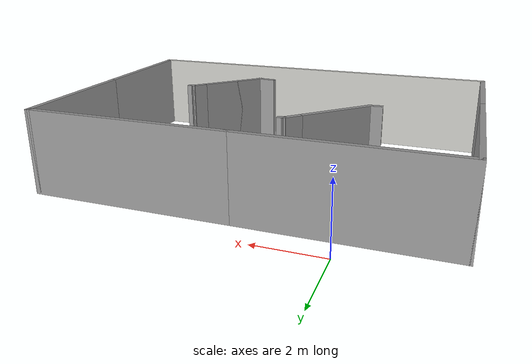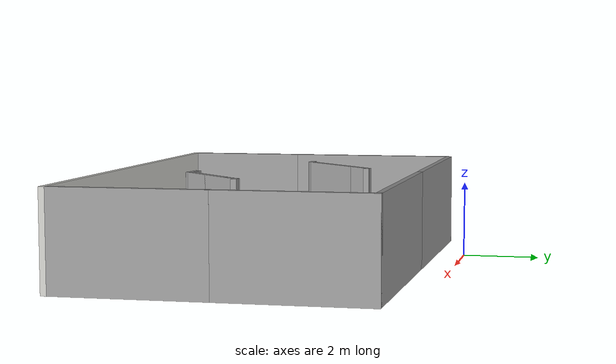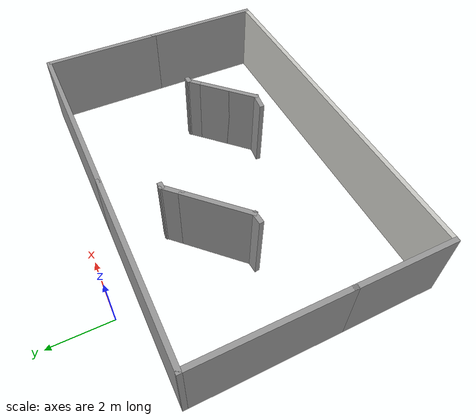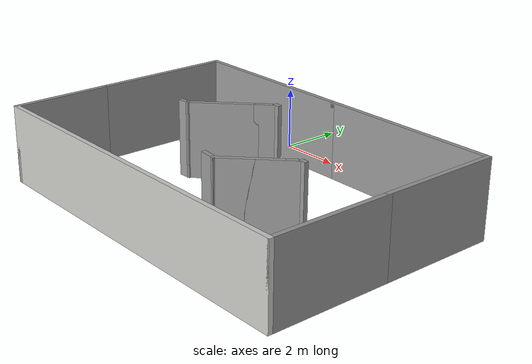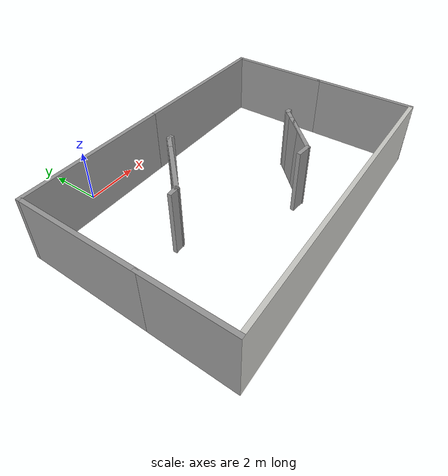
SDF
<?xml version='1.0'?>
<sdf version='1.7'>
  <model name='rmul_2025'>
    <pose>2.89 -4.2975 0 0 -0 0</pose>
    <link name='Wall_0'>
      <collision name='Wall_0_Collision'>
        <geometry>
          <box>
            <size>6 0.15 2.5</size>
          </box>
        </geometry>
        <pose>0 0 1.25 0 -0 0</pose>
      </collision>
      <visual name='Wall_0_Visual'>
        <pose>0 0 1.25 0 -0 0</pose>
        <geometry>
          <box>
            <size>6 0.15 2.5</size>
          </box>
        </geometry>
        <material>
          <script>
            <uri>file://media/materials/scripts/gazebo.material</uri>
            <name>Gazebo/Grey</name>
          </script>
          <ambient>1 1 1 1</ambient>
        </material>
        <meta>
          <layer>0</layer>
        </meta>
      </visual>
      <pose>-2.925 3.4775 0 0 -0 0</pose>
    </link>
    <link name='Wall_12'>
      <collision name='Wall_12_Collision'>
        <geometry>
          <box>
            <size>4.75 0.15 2.5</size>
          </box>
        </geometry>
        <pose>0 0 1.25 0 -0 0</pose>
      </collision>
      <visual name='Wall_12_Visual'>
        <pose>0 0 1.25 0 -0 0</pose>
        <geometry>
          <box>
            <size>4.75 0.15 2.5</size>
          </box>
        </geometry>
        <material>
          <script>
            <uri>file://media/materials/scripts/gazebo.material</uri>
            <name>Gazebo/Grey</name>
          </script>
          <ambient>1 1 1 1</ambient>
        </material>
        <meta>
          <layer>0</layer>
        </meta>
      </visual>
      <pose>-5.85 1.1775 0 0 -0 -1.5708</pose>
    </link>
    <link name='Wall_14'>
      <collision name='Wall_14_Collision'>
        <geometry>
          <box>
            <size>3.25 0.15 2.5</size>
          </box>
        </geometry>
        <pose>0 0 1.25 0 -0 0</pose>
      </collision>
      <visual name='Wall_14_Visual'>
        <pose>0 0 1.25 0 -0 0</pose>
        <geometry>
          <box>
            <size>3.25 0.15 2.5</size>
          </box>
        </geometry>
        <material>
          <script>
            <uri>file://media/materials/scripts/gazebo.material</uri>
            <name>Gazebo/Grey</name>
          </script>
          <ambient>1 1 1 1</ambient>
        </material>
        <meta>
          <layer>0</layer>
        </meta>
      </visual>
      <pose>-5.85 -2.6725 0 0 -0 -1.5708</pose>
    </link>
    <link name='Wall_15'>
      <collision name='Wall_15_Collision'>
        <geometry>
          <box>
            <size>11.85 0.15 2.5</size>
          </box>
        </geometry>
        <pose>0 0 1.25 0 -0 0</pose>
      </collision>
      <visual name='Wall_15_Visual'>
        <pose>0 0 1.25 0 -0 0</pose>
        <geometry>
          <box>
            <size>11.85 0.15 2.5</size>
          </box>
        </geometry>
        <material>
          <script>
            <uri>file://media/materials/scripts/gazebo.material</uri>
            <name>Gazebo/CeilingTiled</name>
          </script>
          <ambient>1 1 1 1</ambient>
        </material>
        <meta>
          <layer>0</layer>
        </meta>
      </visual>
      <pose>0 -4.2225 0 0 -0 0</pose>
    </link>
    <link name='Wall_18'>
      <collision name='Wall_18_Collision'>
        <geometry>
          <box>
            <size>2.25 0.15 2.5</size>
          </box>
        </geometry>
        <pose>0 0 1.25 0 -0 0</pose>
      </collision>
      <visual name='Wall_18_Visual'>
        <pose>0 0 1.25 0 -0 0</pose>
        <geometry>
          <box>
            <size>2.25 0.15 2.5</size>
          </box>
        </geometry>
        <material>
          <script>
            <uri>file://media/materials/scripts/gazebo.material</uri>
            <name>Gazebo/Grey</name>
          </script>
          <ambient>1 1 1 1</ambient>
        </material>
        <meta>
          <layer>0</layer>
        </meta>
      </visual>
      <pose>-2.13897 0.790755 0 0 -0 -2.35619</pose>
    </link>
    <link name='Wall_20'>
      <collision name='Wall_20_Collision'>
        <geometry>
          <box>
            <size>2 0.15 2.5</size>
          </box>
        </geometry>
        <pose>0 0 1.25 0 -0 0</pose>
      </collision>
      <visual name='Wall_20_Visual'>
        <pose>0 0 1.25 0 -0 0</pose>
        <geometry>
          <box>
            <size>2 0.15 2.5</size>
          </box>
        </geometry>
        <material>
          <script>
            <uri>file://media/materials/scripts/gazebo.material</uri>
            <name>Gazebo/Grey</name>
          </script>
          <ambient>1 1 1 1</ambient>
        </material>
        <meta>
          <layer>0</layer>
        </meta>
      </visual>
      <pose>1.90395 -1.5401 0 0 -0 -2.35619</pose>
    </link>
    <link name='Wall_21'>
      <collision name='Wall_21_Collision'>
        <geometry>
          <box>
            <size>2.5 0.15 2.5</size>
          </box>
        </geometry>
        <pose>0 0 1.25 0 -0 0</pose>
      </collision>
      <visual name='Wall_21_Visual'>
        <pose>0 0 1.25 0 -0 0</pose>
        <geometry>
          <box>
            <size>2.5 0.15 2.5</size>
          </box>
        </geometry>
        <material>
          <script>
            <uri>file://media/materials/scripts/gazebo.material</uri>
            <name>Gazebo/Grey</name>
          </script>
          <ambient>1 1 1 1</ambient>
        </material>
        <meta>
          <layer>0</layer>
        </meta>
      </visual>
      <pose>2.08073 -1.36332 0 0 -0 0.785398</pose>
    </link>
    <link name='Wall_23'>
      <collision name='Wall_23_Collision'>
        <geometry>
          <box>
            <size>0.75 0.15 2.5</size>
          </box>
        </geometry>
        <pose>0 0 1.25 0 -0 0</pose>
      </collision>
      <visual name='Wall_23_Visual'>
        <pose>0 0 1.25 0 -0 0</pose>
        <geometry>
          <box>
            <size>0.75 0.15 2.5</size>
          </box>
        </geometry>
        <material>
          <script>
            <uri>file://media/materials/scripts/gazebo.material</uri>
            <name>Gazebo/Grey</name>
          </script>
          <ambient>1 1 1 1</ambient>
        </material>
        <meta>
          <layer>0</layer>
        </meta>
      </visual>
      <pose>-1.18438 1.74535 0 0 -0 0.785398</pose>
    </link>
    <link name='Wall_25'>
      <collision name='Wall_25_Collision'>
        <geometry>
          <box>
            <size>0.612693 0.15 2.5</size>
          </box>
        </geometry>
        <pose>0 0 1.25 0 -0 0</pose>
      </collision>
      <visual name='Wall_25_Visual'>
        <pose>0 0 1.25 0 -0 0</pose>
        <geometry>
          <box>
            <size>0.612693 0.15 2.5</size>
          </box>
        </geometry>
        <material>
          <script>
            <uri>file://media/materials/scripts/gazebo.material</uri>
            <name>Gazebo/Grey</name>
          </script>
          <ambient>1 1 1 1</ambient>
        </material>
        <meta>
          <layer>0</layer>
        </meta>
      </visual>
      <pose>1.02 -2.16817 0 0 -0 -0.112628</pose>
    </link>
    <link name='Wall_27'>
      <collision name='Wall_27_Collision'>
        <geometry>
          <box>
            <size>0.25 0.15 2.5</size>
          </box>
        </geometry>
        <pose>0 0 1.25 0 -0 0</pose>
      </collision>
      <visual name='Wall_27_Visual'>
        <pose>0 0 1.25 0 -0 0</pose>
        <geometry>
          <box>
            <size>0.25 0.15 2.5</size>
          </box>
        </geometry>
        <material>
          <script>
            <uri>file://media/materials/scripts/gazebo.material</uri>
            <name>Gazebo/Grey</name>
          </script>
          <ambient>1 1 1 1</ambient>
        </material>
        <meta>
          <layer>0</layer>
        </meta>
      </visual>
      <pose>2.96158 -0.532473 0 0 -0 0</pose>
    </link>
    <link name='Wall_29'>
      <collision name='Wall_29_Collision'>
        <geometry>
          <box>
            <size>0.435082 0.15 2.5</size>
          </box>
        </geometry>
        <pose>0 0 1.25 0 -0 0</pose>
      </collision>
      <visual name='Wall_29_Visual'>
        <pose>0 0 1.25 0 -0 0</pose>
        <geometry>
          <box>
            <size>0.435082 0.15 2.5</size>
          </box>
        </geometry>
        <material>
          <script>
            <uri>file://media/materials/scripts/gazebo.material</uri>
            <name>Gazebo/Grey</name>
          </script>
          <ambient>1 1 1 1</ambient>
        </material>
        <meta>
          <layer>0</layer>
        </meta>
      </visual>
      <pose>-3.02357 0.037549 0 0 -0 0.075448</pose>
    </link>
    <link name='Wall_31'>
      <collision name='Wall_31_Collision'>
        <geometry>
          <box>
            <size>0.25 0.15 2.5</size>
          </box>
        </geometry>
        <pose>0 0 1.25 0 -0 0</pose>
      </collision>
      <visual name='Wall_31_Visual'>
        <pose>0 0 1.25 0 -0 0</pose>
        <geometry>
          <box>
            <size>0.25 0.15 2.5</size>
          </box>
        </geometry>
        <material>
          <script>
            <uri>file://media/materials/scripts/gazebo.material</uri>
            <name>Gazebo/Grey</name>
          </script>
          <ambient>1 1 1 1</ambient>
        </material>
        <meta>
          <layer>0</layer>
        </meta>
      </visual>
      <pose>-0.922244 1.95748 0 0 -0 0</pose>
    </link>
    <link name='Wall_33'>
      <collision name='Wall_33_Collision'>
        <geometry>
          <box>
            <size>0.25 0.15 2.5</size>
          </box>
        </geometry>
        <pose>0 0 1.25 0 -0 0</pose>
      </collision>
      <visual name='Wall_33_Visual'>
        <pose>0 0 1.25 0 -0 0</pose>
        <geometry>
          <box>
            <size>0.25 0.15 2.5</size>
          </box>
        </geometry>
        <material>
          <script>
            <uri>file://media/materials/scripts/gazebo.material</uri>
            <name>Gazebo/Grey</name>
          </script>
          <ambient>1 1 1 1</ambient>
        </material>
        <meta>
          <layer>0</layer>
        </meta>
      </visual>
      <pose>-0.922244 1.95748 0 0 -0 0</pose>
    </link>
    <link name='Wall_4'>
      <collision name='Wall_4_Collision'>
        <geometry>
          <box>
            <size>6 0.15 2.5</size>
          </box>
        </geometry>
        <pose>0 0 1.25 0 -0 0</pose>
      </collision>
      <visual name='Wall_4_Visual'>
        <pose>0 0 1.25 0 -0 0</pose>
        <geometry>
          <box>
            <size>6 0.15 2.5</size>
          </box>
        </geometry>
        <material>
          <script>
            <uri>file://media/materials/scripts/gazebo.material</uri>
            <name>Gazebo/Grey</name>
          </script>
          <ambient>1 1 1 1</ambient>
        </material>
        <meta>
          <layer>0</layer>
        </meta>
      </visual>
      <pose>2.925 3.4775 0 0 -0 0</pose>
    </link>
    <link name='Wall_6'>
      <collision name='Wall_6_Collision'>
        <geometry>
          <box>
            <size>4 0.15 2.5</size>
          </box>
        </geometry>
        <pose>0 0 1.25 0 -0 0</pose>
      </collision>
      <visual name='Wall_6_Visual'>
        <pose>0 0 1.25 0 -0 0</pose>
        <geometry>
          <box>
            <size>4 0.15 2.5</size>
          </box>
        </geometry>
        <material>
          <script>
            <uri>file://media/materials/scripts/gazebo.material</uri>
            <name>Gazebo/Grey</name>
          </script>
          <ambient>1 1 1 1</ambient>
        </material>
        <meta>
          <layer>0</layer>
        </meta>
      </visual>
      <pose>5.85 1.5525 0 0 -0 -1.5708</pose>
    </link>
    <link name='Wall_8'>
      <collision name='Wall_8_Collision'>
        <geometry>
          <box>
            <size>4 0.15 2.5</size>
          </box>
        </geometry>
        <pose>0 0 1.25 0 -0 0</pose>
      </collision>
      <visual name='Wall_8_Visual'>
        <pose>0 0 1.25 0 -0 0</pose>
        <geometry>
          <box>
            <size>4 0.15 2.5</size>
          </box>
        </geometry>
        <material>
          <script>
            <uri>file://media/materials/scripts/gazebo.material</uri>
            <name>Gazebo/Grey</name>
          </script>
          <ambient>1 1 1 1</ambient>
        </material>
        <meta>
          <layer>0</layer>
        </meta>
      </visual>
      <pose>5.85 -2.2975 0 0 -0 -1.5708</pose>
    </link>
    <static>1</static>
  </model>
</sdf>
